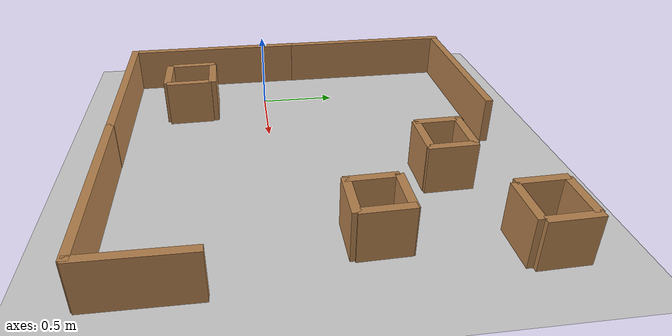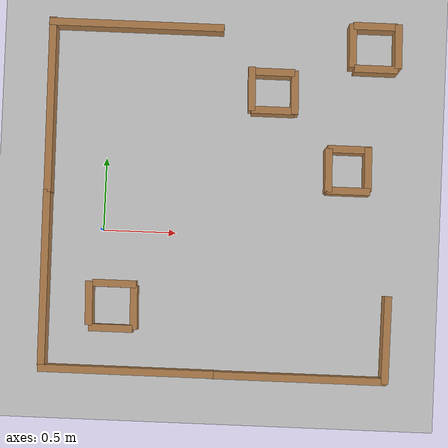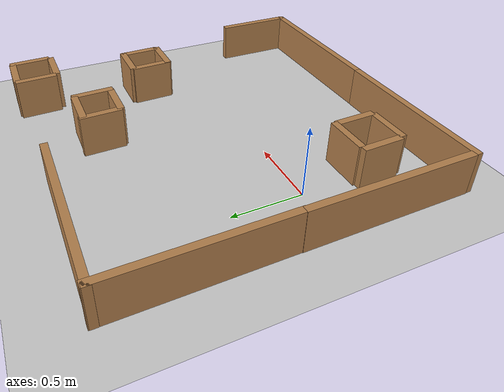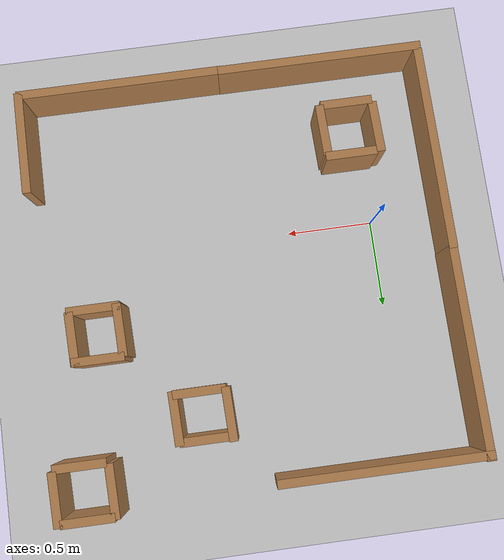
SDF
<sdf version="1.7">
 <world name="default">
  <light name="sun" type="directional">
   <pose>0 0 10 0 -0 0</pose>
   <diffuse>0.8 0.8 0.8 1</diffuse>
   <specular>0.2 0.2 0.2 1</specular>
   <attenuation>
    <range>1000</range>
    <constant>0.9</constant>
    <linear>0.01</linear>
    <quadratic>0.001</quadratic>
   </attenuation>
   <direction>-0.5 0.1 -0.9</direction>
   <spot><inner_angle>0</inner_angle><outer_angle>0</outer_angle><falloff>0</falloff></spot>
  </light>
  <model name="ground_plane">
   <static>1</static>
   <link name="link">
    <collision name="collision">
     <geometry><plane><normal>0 0 1</normal><size>100 100</size></plane></geometry>
     <surface>
      <contact><collide_bitmask>65535</collide_bitmask></contact>
      <friction><ode><mu>100</mu><mu2>50</mu2></ode></friction>
     </surface>
    </collision>
    <visual name="visual">
     <cast_shadows>0</cast_shadows>
     <geometry><plane><normal>0 0 1</normal><size>100 100</size></plane></geometry>
     <material>
      <script><uri>file://media/materials/scripts/gazebo.material</uri><name>Gazebo/Grey</name></script>
     </material>
    </visual>
   </link>
  </model>
  <gravity>0 0 -9.8</gravity>
  <magnetic_field>6e-06 2.3e-05 -4.2e-05</magnetic_field>
  <atmosphere type="adiabatic"/>
  <physics type="ode">
   <max_step_size>0.001</max_step_size>
   <real_time_factor>1</real_time_factor>
   <real_time_update_rate>1000</real_time_update_rate>
  </physics>
  <scene><ambient>0.4 0.4 0.4 1</ambient><background>0.7 0.7 0.7 1</background><shadows>1</shadows></scene>
  <spherical_coordinates>
   <surface_model>EARTH_WGS84</surface_model>
   <latitude_deg>0</latitude_deg>
   <longitude_deg>0</longitude_deg>
   <elevation>0</elevation>
   <heading_deg>0</heading_deg>
  </spherical_coordinates>
  <model name="wall120cm">
   <pose>1.38085 -0.963017 0 0 -0 0</pose>
   <link name="Wall_11">
    <collision name="Wall_11_Collision">
     <geometry><box><size>1.2 0.05 0.3</size></box></geometry>
     <pose>0 0 0.15 0 -0 0</pose>
    </collision>
    <visual name="Wall_11_Visual">
     <pose>0 0 0.15 0 -0 0</pose>
     <geometry><box><size>1.2 0.05 0.3</size></box></geometry>
     <material>
      <script><uri>file://media/materials/scripts/gazebo.material</uri><name>Gazebo/Wood</name></script>
      <ambient>1 1 1 1</ambient>
     </material>
     <meta><layer>0</layer></meta>
    </visual>
   </link>
   <static>1</static>
  </model>
  <model name="wall120cm_2">
   <pose>0.199884 -0.961272 0 0 -0 0</pose>
   <link name="Wall_11">
    <collision name="Wall_11_Collision">
     <geometry><box><size>1.2 0.05 0.3</size></box></geometry>
     <pose>0 0 0.15 0 -0 0</pose>
    </collision>
    <visual name="Wall_11_Visual">
     <pose>0 0 0.15 0 -0 0</pose>
     <geometry><box><size>1.2 0.05 0.3</size></box></geometry>
     <material>
      <script><uri>file://media/materials/scripts/gazebo.material</uri><name>Gazebo/Wood</name></script>
      <ambient>1 1 1 1</ambient>
     </material>
     <meta><layer>0</layer></meta>
    </visual>
   </link>
   <static>1</static>
  </model>
  <model name="wall120cm_0_clone">
   <pose>-0.383187 -0.342882 0 0 0 -1.56294</pose>
   <link name="Wall_11">
    <collision name="Wall_11_Collision">
     <geometry><box><size>1.2 0.05 0.3</size></box></geometry>
     <pose>0 0 0.15 0 -0 0</pose>
    </collision>
    <visual name="Wall_11_Visual">
     <pose>0 0 0.15 0 -0 0</pose>
     <geometry><box><size>1.2 0.05 0.3</size></box></geometry>
     <material>
      <script><uri>file://media/materials/scripts/gazebo.material</uri><name>Gazebo/Wood</name></script>
      <ambient>1 1 1 1</ambient>
     </material>
     <meta><layer>0</layer></meta>
    </visual>
   </link>
   <static>1</static>
  </model>
  <model name="wall120cm_0_clone_1">
   <pose>-0.389915 0.842484 0 0 0 -1.56294</pose>
   <link name="Wall_11">
    <collision name="Wall_11_Collision">
     <geometry><box><size>1.2 0.05 0.3</size></box></geometry>
     <pose>0 0 0.15 0 -0 0</pose>
    </collision>
    <visual name="Wall_11_Visual">
     <pose>0 0 0.15 0 -0 0</pose>
     <geometry><box><size>1.2 0.05 0.3</size></box></geometry>
     <material>
      <script><uri>file://media/materials/scripts/gazebo.material</uri><name>Gazebo/Wood</name></script>
      <ambient>1 1 1 1</ambient>
     </material>
     <meta><layer>0</layer></meta>
    </visual>
   </link>
   <static>1</static>
  </model>
  <model name="wall60cm_0_clone_clone">
   <pose>1.9705 -0.677769 0 0 0 -1.57618</pose>
   <link name="Wall_4">
    <collision name="Wall_4_Collision">
     <geometry><box><size>0.6 0.05 0.3</size></box></geometry>
     <pose>0 0 0.15 0 -0 0</pose>
    </collision>
    <visual name="Wall_4_Visual">
     <pose>0 0 0.15 0 -0 0</pose>
     <geometry><box><size>0.6 0.05 0.3</size></box></geometry>
     <material>
      <script><uri>file://media/materials/scripts/gazebo.material</uri><name>Gazebo/Wood</name></script>
      <ambient>1 1 1 1</ambient>
     </material>
     <meta><layer>0</layer></meta>
    </visual>
   </link>
   <static>1</static>
  </model>
  <model name="wall30cm_0_clone_clone">
   <pose>0.984739 1.00415 0 0 0 -1.54222</pose>
   <link name="Wall_0">
    <collision name="Wall_0_Collision">
     <geometry><box><size>0.3 0.05 0.3</size></box></geometry>
     <pose>0 0 0.15 0 -0 0</pose>
    </collision>
    <visual name="Wall_0_Visual">
     <pose>0 0 0.15 0 -0 0</pose>
     <geometry><box><size>0.3 0.05 0.3</size></box></geometry>
     <material>
      <script><uri>file://media/materials/scripts/gazebo.material</uri><name>Gazebo/Wood</name></script>
      <ambient>1 1 1 1</ambient>
     </material>
     <meta><layer>0</layer></meta>
    </visual>
   </link>
   <static>1</static>
  </model>
  <model name="wall30cm_0_clone_clone_0">
   <pose>1.28003 0.990658 0 0 0 -1.54222</pose>
   <link name="Wall_0">
    <collision name="Wall_0_Collision">
     <geometry><box><size>0.3 0.05 0.3</size></box></geometry>
     <pose>0 0 0.15 0 -0 0</pose>
    </collision>
    <visual name="Wall_0_Visual">
     <pose>0 0 0.15 0 -0 0</pose>
     <geometry><box><size>0.3 0.05 0.3</size></box></geometry>
     <material>
      <script><uri>file://media/materials/scripts/gazebo.material</uri><name>Gazebo/Wood</name></script>
      <ambient>1 1 1 1</ambient>
     </material>
     <meta><layer>0</layer></meta>
    </visual>
   </link>
   <static>1</static>
  </model>
  <model name="wall30cm_clone_clone">
   <pose>1.12444 1.1236 0 0 -0 0</pose>
   <link name="Wall_0">
    <collision name="Wall_0_Collision">
     <geometry><box><size>0.3 0.05 0.3</size></box></geometry>
     <pose>0 0 0.15 0 -0 0</pose>
    </collision>
    <visual name="Wall_0_Visual">
     <pose>0 0 0.15 0 -0 0</pose>
     <geometry><box><size>0.3 0.05 0.3</size></box></geometry>
     <material>
      <script><uri>file://media/materials/scripts/gazebo.material</uri><name>Gazebo/Wood</name></script>
      <ambient>1 1 1 1</ambient>
     </material>
     <meta><layer>0</layer></meta>
    </visual>
   </link>
   <static>1</static>
  </model>
  <model name="wall30cm_clone_clone_0">
   <pose>1.13526 0.861628 0 0 -0 0</pose>
   <link name="Wall_0">
    <collision name="Wall_0_Collision">
     <geometry><box><size>0.3 0.05 0.3</size></box></geometry>
     <pose>0 0 0.15 0 -0 0</pose>
    </collision>
    <visual name="Wall_0_Visual">
     <pose>0 0 0.15 0 -0 0</pose>
     <geometry><box><size>0.3 0.05 0.3</size></box></geometry>
     <material>
      <script><uri>file://media/materials/scripts/gazebo.material</uri><name>Gazebo/Wood</name></script>
      <ambient>1 1 1 1</ambient>
     </material>
     <meta><layer>0</layer></meta>
    </visual>
   </link>
   <static>1</static>
  </model>
  <model name="wall30cm_clone_clone_1">
   <pose>1.66967 0.329727 0 0 -0 0</pose>
   <link name="Wall_0">
    <collision name="Wall_0_Collision">
     <geometry><box><size>0.3 0.05 0.3</size></box></geometry>
     <pose>0 0 0.15 0 -0 0</pose>
    </collision>
    <visual name="Wall_0_Visual">
     <pose>0 0 0.15 0 -0 0</pose>
     <geometry><box><size>0.3 0.05 0.3</size></box></geometry>
     <material>
      <script><uri>file://media/materials/scripts/gazebo.material</uri><name>Gazebo/Wood</name></script>
      <ambient>1 1 1 1</ambient>
     </material>
     <meta><layer>0</layer></meta>
    </visual>
   </link>
   <static>1</static>
  </model>
  <model name="wall30cm_clone_clone_2">
   <pose>1.67004 0.613882 0 0 -0 0</pose>
   <link name="Wall_0">
    <collision name="Wall_0_Collision">
     <geometry><box><size>0.3 0.05 0.3</size></box></geometry>
     <pose>0 0 0.15 0 -0 0</pose>
    </collision>
    <visual name="Wall_0_Visual">
     <pose>0 0 0.15 0 -0 0</pose>
     <geometry><box><size>0.3 0.05 0.3</size></box></geometry>
     <material>
      <script><uri>file://media/materials/scripts/gazebo.material</uri><name>Gazebo/Wood</name></script>
      <ambient>1 1 1 1</ambient>
     </material>
     <meta><layer>0</layer></meta>
    </visual>
   </link>
   <static>1</static>
  </model>
  <model name="wall30cm_0_clone_clone_0_clone">
   <pose>1.53163 0.466422 0 0 0 -1.54222</pose>
   <link name="Wall_0">
    <collision name="Wall_0_Collision">
     <geometry><box><size>0.3 0.05 0.3</size></box></geometry>
     <pose>0 0 0.15 0 -0 0</pose>
    </collision>
    <visual name="Wall_0_Visual">
     <pose>0 0 0.15 0 -0 0</pose>
     <geometry><box><size>0.3 0.05 0.3</size></box></geometry>
     <material>
      <script><uri>file://media/materials/scripts/gazebo.material</uri><name>Gazebo/Wood</name></script>
      <ambient>1 1 1 1</ambient>
     </material>
     <meta><layer>0</layer></meta>
    </visual>
   </link>
   <static>1</static>
  </model>
  <model name="wall30cm_0_clone_clone_0_clone_0">
   <pose>1.80136 0.481679 0 0 0 -1.54222</pose>
   <link name="Wall_0">
    <collision name="Wall_0_Collision">
     <geometry><box><size>0.3 0.05 0.3</size></box></geometry>
     <pose>0 0 0.15 0 -0 0</pose>
    </collision>
    <visual name="Wall_0_Visual">
     <pose>0 0 0.15 0 -0 0</pose>
     <geometry><box><size>0.3 0.05 0.3</size></box></geometry>
     <material>
      <script><uri>file://media/materials/scripts/gazebo.material</uri><name>Gazebo/Wood</name></script>
      <ambient>1 1 1 1</ambient>
     </material>
     <meta><layer>0</layer></meta>
    </visual>
   </link>
   <static>1</static>
  </model>
  <model name="wall120cm_0">
   <pose>0.179403 1.41201 0 0 -0 0</pose>
   <link name="Wall_11">
    <collision name="Wall_11_Collision">
     <geometry><box><size>1.2 0.05 0.3</size></box></geometry>
     <pose>0 0 0.15 0 -0 0</pose>
    </collision>
    <visual name="Wall_11_Visual">
     <pose>0 0 0.15 0 -0 0</pose>
     <geometry><box><size>1.2 0.05 0.3</size></box></geometry>
     <material>
      <script><uri>file://media/materials/scripts/gazebo.material</uri><name>Gazebo/Wood</name></script>
      <ambient>1 1 1 1</ambient>
     </material>
     <meta><layer>0</layer></meta>
    </visual>
   </link>
   <static>1</static>
  </model>
  <model name="wall30cm_0_clone_clone_0_clone_clone">
   <pose>1.66588 1.32841 0 0 0 -1.54222</pose>
   <link name="Wall_0">
    <collision name="Wall_0_Collision">
     <geometry><box><size>0.3 0.05 0.3</size></box></geometry>
     <pose>0 0 0.15 0 -0 0</pose>
    </collision>
    <visual name="Wall_0_Visual">
     <pose>0 0 0.15 0 -0 0</pose>
     <geometry><box><size>0.3 0.05 0.3</size></box></geometry>
     <material>
      <script><uri>file://media/materials/scripts/gazebo.material</uri><name>Gazebo/Wood</name></script>
      <ambient>1 1 1 1</ambient>
     </material>
     <meta><layer>0</layer></meta>
    </visual>
   </link>
   <static>1</static>
  </model>
  <model name="wall30cm_0_clone_clone_0_clone_clone_0">
   <pose>1.97792 1.33363 0 0 0 -1.54222</pose>
   <link name="Wall_0">
    <collision name="Wall_0_Collision">
     <geometry><box><size>0.3 0.05 0.3</size></box></geometry>
     <pose>0 0 0.15 0 -0 0</pose>
    </collision>
    <visual name="Wall_0_Visual">
     <pose>0 0 0.15 0 -0 0</pose>
     <geometry><box><size>0.3 0.05 0.3</size></box></geometry>
     <material>
      <script><uri>file://media/materials/scripts/gazebo.material</uri><name>Gazebo/Wood</name></script>
      <ambient>1 1 1 1</ambient>
     </material>
     <meta><layer>0</layer></meta>
    </visual>
   </link>
   <static>1</static>
  </model>
  <model name="wall30cm_clone_clone_2_clone">
   <pose>1.83045 1.17218 0 0 -0 0</pose>
   <link name="Wall_0">
    <collision name="Wall_0_Collision">
     <geometry><box><size>0.3 0.05 0.3</size></box></geometry>
     <pose>0 0 0.15 0 -0 0</pose>
    </collision>
    <visual name="Wall_0_Visual">
     <pose>0 0 0.15 0 -0 0</pose>
     <geometry><box><size>0.3 0.05 0.3</size></box></geometry>
     <material>
      <script><uri>file://media/materials/scripts/gazebo.material</uri><name>Gazebo/Wood</name></script>
      <ambient>1 1 1 1</ambient>
     </material>
     <meta><layer>0</layer></meta>
    </visual>
   </link>
   <static>1</static>
  </model>
  <model name="wall30cm_clone_clone_2_clone_0">
   <pose>1.81358 1.46494 0 0 -0 0</pose>
   <link name="Wall_0">
    <collision name="Wall_0_Collision">
     <geometry><box><size>0.3 0.05 0.3</size></box></geometry>
     <pose>0 0 0.15 0 -0 0</pose>
    </collision>
    <visual name="Wall_0_Visual">
     <pose>0 0 0.15 0 -0 0</pose>
     <geometry><box><size>0.3 0.05 0.3</size></box></geometry>
     <material>
      <script><uri>file://media/materials/scripts/gazebo.material</uri><name>Gazebo/Wood</name></script>
      <ambient>1 1 1 1</ambient>
     </material>
     <meta><layer>0</layer></meta>
    </visual>
   </link>
   <static>1</static>
  </model>
  <model name="wall30cm_0_clone_clone_clone">
   <pose>-0.068492 -0.505356 0 0 0 -1.54222</pose>
   <link name="Wall_0">
    <collision name="Wall_0_Collision">
     <geometry><box><size>0.3 0.05 0.3</size></box></geometry>
     <pose>0 0 0.15 0 -0 0</pose>
    </collision>
    <visual name="Wall_0_Visual">
     <pose>0 0 0.15 0 -0 0</pose>
     <geometry><box><size>0.3 0.05 0.3</size></box></geometry>
     <material>
      <script><uri>file://media/materials/scripts/gazebo.material</uri><name>Gazebo/Wood</name></script>
      <ambient>1 1 1 1</ambient>
     </material>
     <meta><layer>0</layer></meta>
    </visual>
   </link>
   <static>1</static>
  </model>
  <model name="wall30cm_0_clone_clone_clone_0">
   <pose>0.23837 -0.524424 0 0 0 -1.54222</pose>
   <link name="Wall_0">
    <collision name="Wall_0_Collision">
     <geometry><box><size>0.3 0.05 0.3</size></box></geometry>
     <pose>0 0 0.15 0 -0 0</pose>
    </collision>
    <visual name="Wall_0_Visual">
     <pose>0 0 0.15 0 -0 0</pose>
     <geometry><box><size>0.3 0.05 0.3</size></box></geometry>
     <material>
      <script><uri>file://media/materials/scripts/gazebo.material</uri><name>Gazebo/Wood</name></script>
      <ambient>1 1 1 1</ambient>
     </material>
     <meta><layer>0</layer></meta>
    </visual>
   </link>
   <static>1</static>
  </model>
  <model name="wall30cm_clone_clone_0_clone">
   <pose>0.085031 -0.671012 0 0 -0 0</pose>
   <link name="Wall_0">
    <collision name="Wall_0_Collision">
     <geometry><box><size>0.3 0.05 0.3</size></box></geometry>
     <pose>0 0 0.15 0 -0 0</pose>
    </collision>
    <visual name="Wall_0_Visual">
     <pose>0 0 0.15 0 -0 0</pose>
     <geometry><box><size>0.3 0.05 0.3</size></box></geometry>
     <material>
      <script><uri>file://media/materials/scripts/gazebo.material</uri><name>Gazebo/Wood</name></script>
      <ambient>1 1 1 1</ambient>
     </material>
     <meta><layer>0</layer></meta>
    </visual>
   </link>
   <static>1</static>
  </model>
  <model name="wall30cm_clone_clone_0_clone_0">
   <pose>0.098807 -0.365986 0 0 -0 0</pose>
   <link name="Wall_0">
    <collision name="Wall_0_Collision">
     <geometry><box><size>0.3 0.05 0.3</size></box></geometry>
     <pose>0 0 0.15 0 -0 0</pose>
    </collision>
    <visual name="Wall_0_Visual">
     <pose>0 0 0.15 0 -0 0</pose>
     <geometry><box><size>0.3 0.05 0.3</size></box></geometry>
     <material>
      <script><uri>file://media/materials/scripts/gazebo.material</uri><name>Gazebo/Wood</name></script>
      <ambient>1 1 1 1</ambient>
     </material>
     <meta><layer>0</layer></meta>
    </visual>
   </link>
   <static>1</static>
  </model>
 </world>
</sdf>
